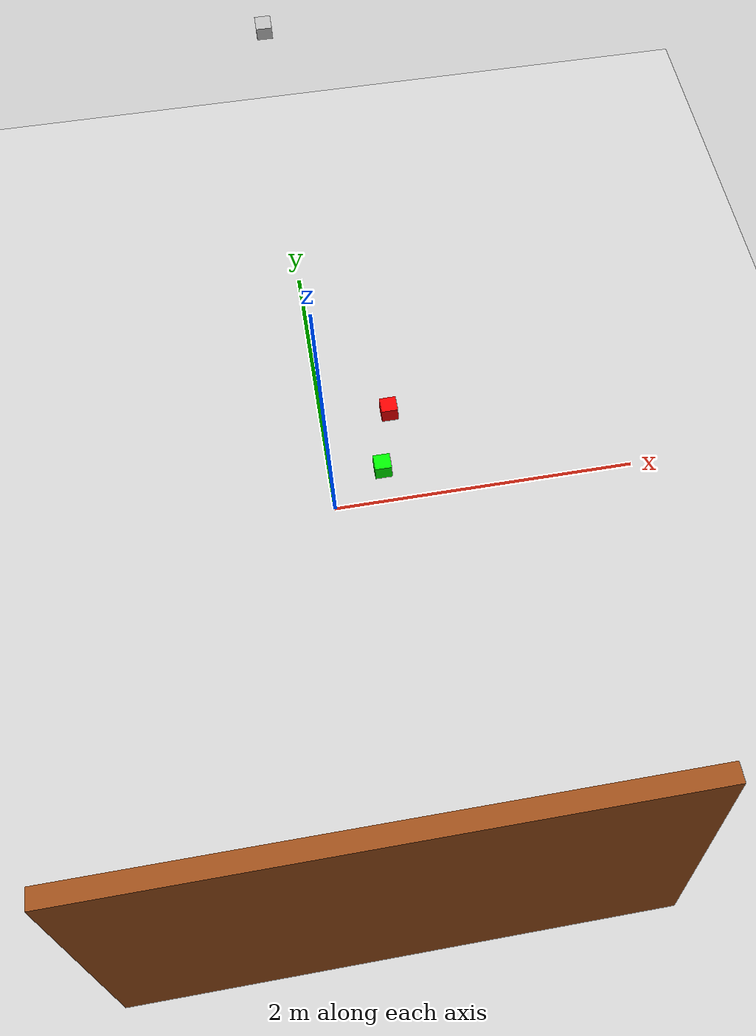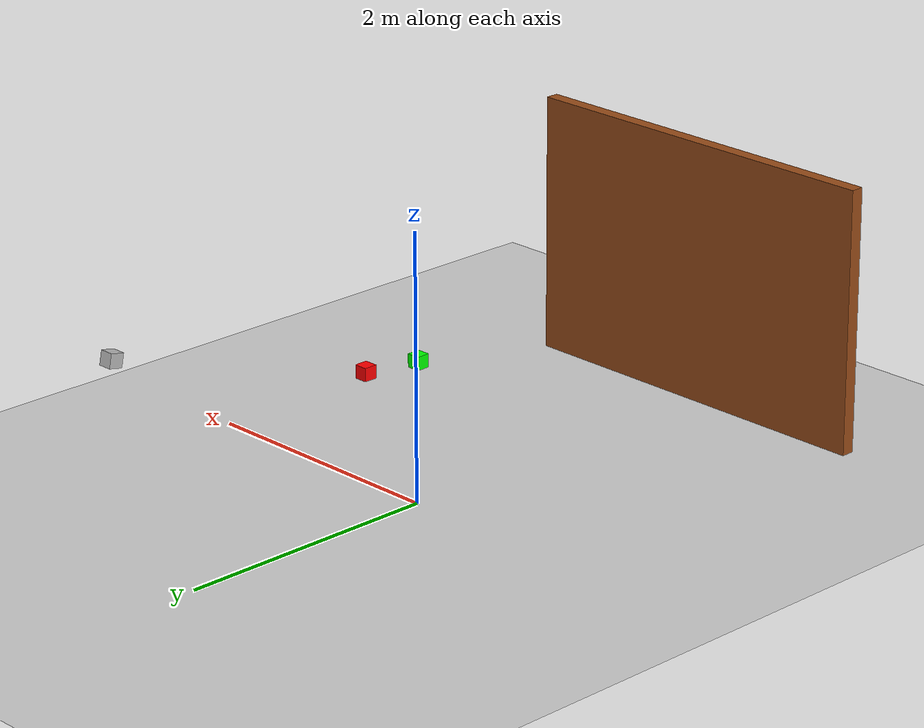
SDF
<sdf version="1.7">
 <world name="openvla_test">
  <physics type="ode"><max_step_size>0.01</max_step_size></physics>
  <light type="directional" name="sun">
   <pose>0 0 10 0 0 0</pose>
   <diffuse>0.8 0.8 0.8 1</diffuse>
   <specular>0.2 0.2 0.2 1</specular>
   <attenuation>
    <range>1000</range>
    <constant>0.9</constant>
    <linear>0.01</linear>
    <quadratic>0.001</quadratic>
   </attenuation>
   <direction>-0.5 0.1 -0.9</direction>
  </light>
  <model name="ground_plane">
   <static>true</static>
   <link name="link">
    <collision name="collision"><geometry><plane><normal>0 0 1</normal></plane></geometry></collision>
    <visual name="visual">
     <geometry><plane><normal>0 0 1</normal><size>100 100</size></plane></geometry>
     <material>
      <ambient>0.8 0.8 0.8 1</ambient>
      <diffuse>0.8 0.8 0.8 1</diffuse>
      <specular>0.8 0.8 0.8 1</specular>
     </material>
    </visual>
   </link>
  </model>
  <model name="red_cube">
   <pose>0.40 0.10 0.9 0 0 0</pose>
   <link name="link">
    <inertial>
     <mass>0.1</mass>
     <inertia><ixx>0.000167</ixx><iyy>0.000167</iyy><izz>0.000167</izz></inertia>
    </inertial>
    <collision name="collision"><geometry><box><size>0.1 0.1 0.1</size></box></geometry></collision>
    <visual name="visual">
     <geometry><box><size>0.1 0.1 0.1</size></box></geometry>
     <material><ambient>1 0 0 1</ambient><diffuse>1 0 0 1</diffuse><specular>0.1 0.1 0.1 1</specular></material>
    </visual>
   </link>
  </model>
  <model name="green_cube">
   <pose>0.30 -0.30 0.9 0 0 0</pose>
   <link name="link">
    <inertial>
     <mass>0.1</mass>
     <inertia><ixx>0.000167</ixx><iyy>0.000167</iyy><izz>0.000167</izz></inertia>
    </inertial>
    <collision name="collision"><geometry><box><size>0.1 0.1 0.1</size></box></geometry></collision>
    <visual name="visual">
     <geometry><box><size>0.1 0.1 0.1</size></box></geometry>
     <material><ambient>0 1 0 1</ambient><diffuse>0 1 0 1</diffuse><specular>0.1 0.1 0.1 1</specular></material>
    </visual>
   </link>
  </model>
  <model name="back_wall">
   <static>true</static>
   <pose>0 -2.8 1.0 0 0 0</pose>
   <link name="link">
    <collision name="collision"><geometry><box><size>3.0 0.1 2.0</size></box></geometry></collision>
    <visual name="visual">
     <geometry><box><size>3.0 0.1 2.0</size></box></geometry>
     <material><ambient>0.4 0.26 0.13 1</ambient><diffuse>0.6 0.3 0.1 1</diffuse></material>
    </visual>
   </link>
  </model>
  <model name="camera">
   <static>true</static>
   <pose>0 2.6 1.8 0 0.2 -1.573</pose>
   <link name="camera_link">
    <inertial>
     <mass>0.1</mass>
     <inertia><ixx>0.000166667</ixx><iyy>0.000166667</iyy><izz>0.000166667</izz></inertia>
    </inertial>
    <collision name="collision"><geometry><box><size>0.1 0.1 0.1</size></box></geometry></collision>
    <visual name="visual"><geometry><box><size>0.1 0.1 0.1</size></box></geometry></visual>
    <sensor name="camera" type="camera">
     <camera>
      <horizontal_fov>1.047</horizontal_fov>
      <image><width>640</width><height>480</height></image>
      <clip><near>0.1</near><far>100</far></clip>
     </camera>
     <always_on>1</always_on>
     <update_rate>30</update_rate>
     <visualize>true</visualize>
     <topic>/camera/image_raw</topic>
     <gz_frame_id>camera_link</gz_frame_id>
    </sensor>
   </link>
  </model>
 </world>
</sdf>
